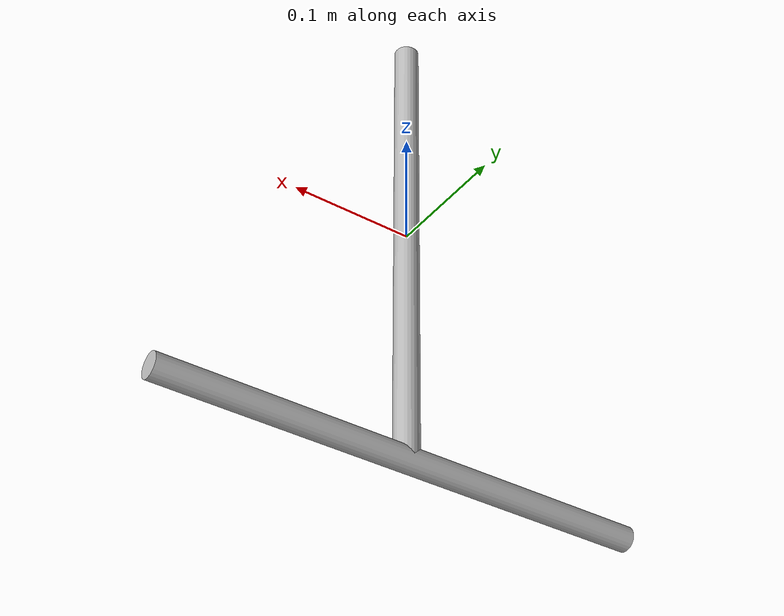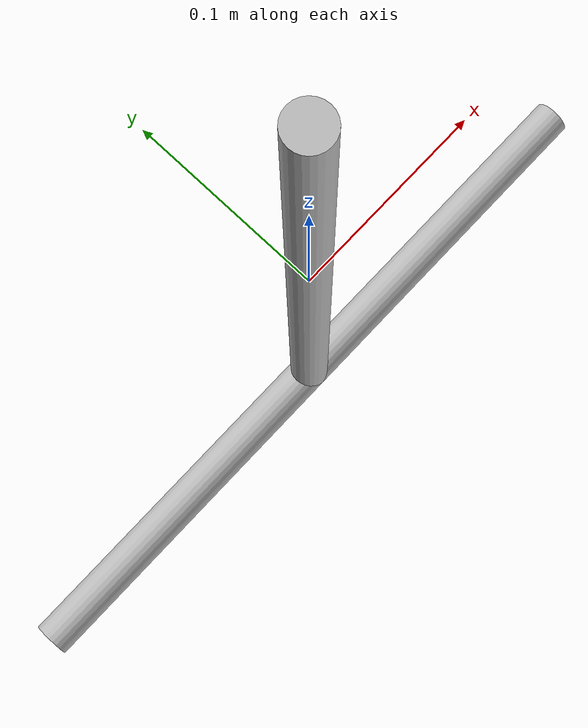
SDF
<sdf version='1.6'>
  <model name='tripod_single'>
    <link name='base_link'>
      <pose frame=''>0 0 0 0 -0 0</pose>
      <inertial>
        <pose frame=''>0 0 0 0 -0 0</pose>
        <mass>0.025</mass>
        <inertia>
          <ixx>0.000334</ixx>
          <ixy>0</ixy>
          <ixz>0</ixz>
          <iyy>0.000334</iyy>
          <iyz>0</iyz>
          <izz>1.25e-06</izz>
        </inertia>
      </inertial>
      <collision name='base_link_collision'>
        <pose frame=''>0 0 0 0 -0 0</pose>
        <geometry>
          <cylinder>
            <length>0.4</length>
            <radius>0.01</radius>
          </cylinder>
        </geometry>
      </collision>
      <visual name='base_link_visual'>
        <pose frame=''>0 0 0 0 -0 0</pose>
        <geometry>
          <cylinder>
            <length>0.4</length>
            <radius>0.01</radius>
          </cylinder>
        </geometry>
      </visual>
    </link>
    <link name='foot_link'>
      <pose frame=''>0 0 -0.2 0 -0 0</pose>
      <inertial>
        <pose frame=''>0 0 0 3.14159 1.57079 3.14159</pose>
        <mass>0.025</mass>
        <inertia>
          <ixx>0.000334</ixx>
          <ixy>0</ixy>
          <ixz>0</ixz>
          <iyy>0.000334</iyy>
          <iyz>0</iyz>
          <izz>1.25e-06</izz>
        </inertia>
      </inertial>
      <collision name='foot_link_collision'>
        <pose frame=''>0 0 0 3.14159 1.57079 3.14159</pose>
        <geometry>
          <cylinder>
            <length>0.4</length>
            <radius>0.01</radius>
          </cylinder>
        </geometry>
      </collision>
      <visual name='foot_link_visual'>
        <pose frame=''>0 0 0 3.14159 1.57079 3.14159</pose>
        <geometry>
          <cylinder>
            <length>0.4</length>
            <radius>0.01</radius>
          </cylinder>
        </geometry>
      </visual>
    </link>
    <joint name='foot_joint' type='revolute'>
      <child>foot_link</child>
      <parent>base_link</parent>
      <axis>
        <xyz>0 0 1</xyz>
        <limit>
          <lower>0</lower>
          <upper>0</upper>
          <effort>0</effort>
          <velocity>0</velocity>
        </limit>
        <dynamics>
          <friction>100</friction>
          <spring_reference>0</spring_reference>
          <spring_stiffness>0</spring_stiffness>
        </dynamics>
        <use_parent_model_frame>0</use_parent_model_frame>
      </axis>
    </joint>
  </model>
</sdf>
